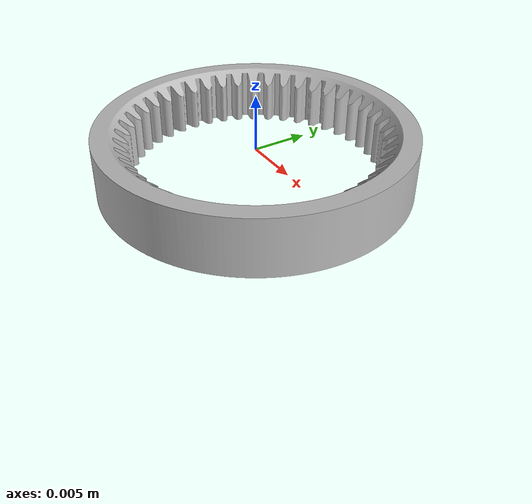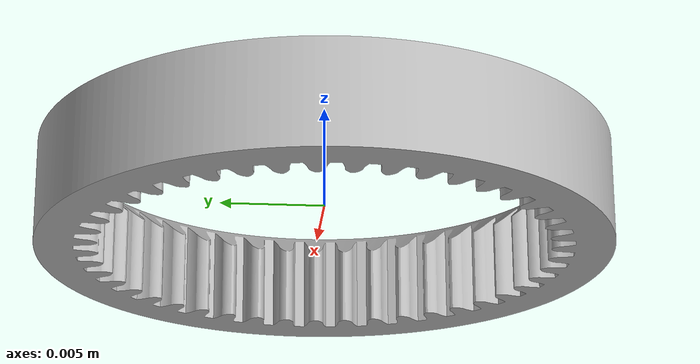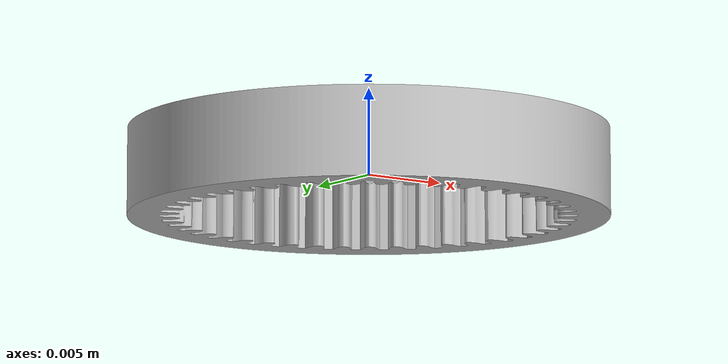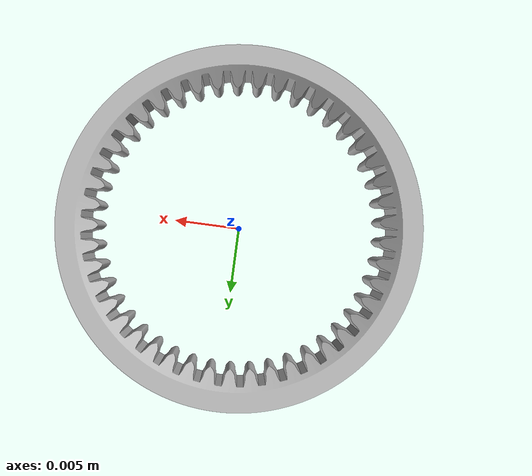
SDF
<?xml version="1.0" ?>
<sdf version="1.5">
  <model name="gear_1_g_testing">
    <static>false</static>
    <link name="link">
      <collision name="collision">
        <geometry>
          <mesh>
            <scale>1 1 1</scale>
            <uri>model://Planetary/gear_1_g_testing/gear_1_g_testing.dae</uri>
          </mesh>
        </geometry>
      </collision>
      <visual name="visual">
        <geometry>
          <mesh>
            <scale>1 1 1</scale>
            <uri>model://Planetary/gear_1_g_testing/gear_1_g_testing.dae</uri>
          </mesh>
        </geometry>
      </visual>
    </link>
  </model>
</sdf>
